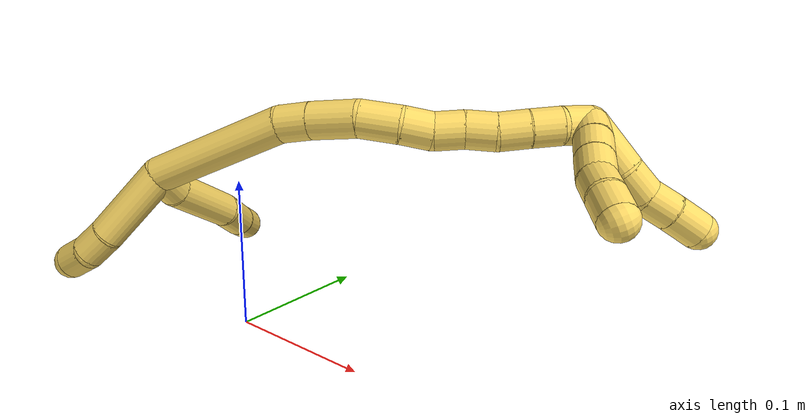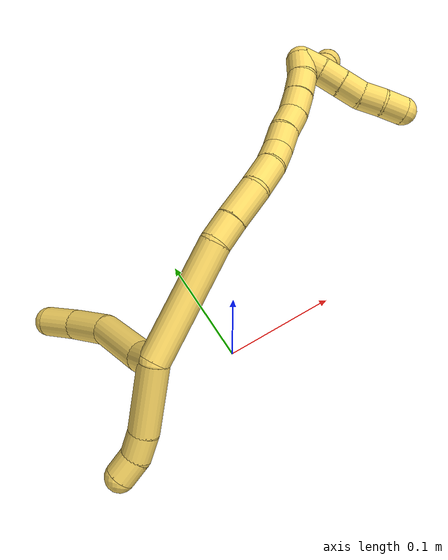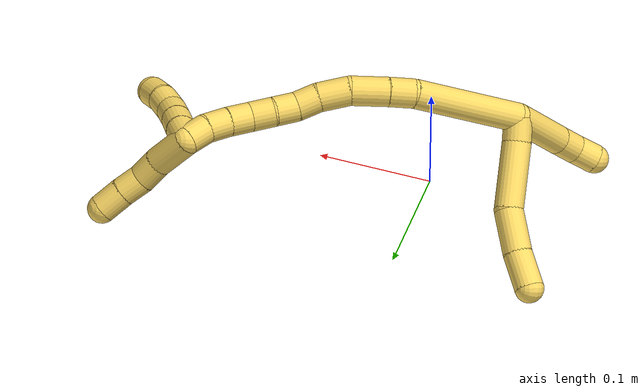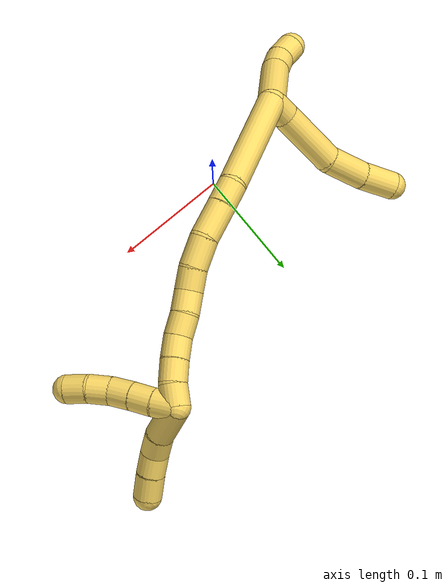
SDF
<sdf version="1.7">
 <world name="default">
  <model name="photoneo_s_sensor">
   <static>1</static>
   <pose>0 0 2 1.57079 1.57079 3.14159</pose>
   <link name="link">
    <inertial><mass>0.1</mass></inertial>
    <sensor name="sensor" type="depth">
     <update_rate>30</update_rate>
     <camera>
      <horizontal_fov>1.22</horizontal_fov>
      <image><width>1920</width><height>1200</height><format>B8G8R8</format></image>
      <clip><near>0.1</near><far>4</far></clip>
      <depth_camera><output>points</output></depth_camera>
     </camera>
     <plugin name="camera_plugin" filename="libgazebo_ros_depth_camera.so">
      <baseline>0.2</baseline>
      <alwaysOn>1</alwaysOn>
      <updateRate>0.0</updateRate>
      <cameraName>camera_ir</cameraName>
      <imageTopicName>/camera/color/image_raw</imageTopicName>
      <cameraInfoTopicName>/camera/color/camera_info</cameraInfoTopicName>
      <depthImageTopicName>/camera/depth/image_raw</depthImageTopicName>
      <depthImageCameraInfoTopicName>/camera/depth/camera_info</depthImageCameraInfoTopicName>
      <pointCloudTopicName>/camera/depth/points</pointCloudTopicName>
      <frameName>fr_optical</frameName>
      <pointCloudCutoff>0.1</pointCloudCutoff>
      <pointCloudCutoffMax>2.0</pointCloudCutoffMax>
      <distortionK1>0</distortionK1>
      <distortionK2>0</distortionK2>
      <distortionK3>0</distortionK3>
      <distortionT1>0</distortionT1>
      <distortionT2>0</distortionT2>
      <CxPrime>0</CxPrime>
      <Cx>0</Cx>
      <Cy>0</Cy>
      <focalLength>0</focalLength>
      <hackBaseline>0</hackBaseline>
     </plugin>
    </sensor>
   </link>
  </model>
  <model name="bin">
   <static>1</static>
   <link name="bottom">
    <collision name="collision-bottom">
     <pose>0 0 -0.01 0 -0 0</pose>
     <geometry><box><size>0.8 0.6 0.02</size></box></geometry>
     <surface>
      <friction><ode><mu>100</mu><mu2>100</mu2></ode></friction>
      <contact><collide_bitmask>65535</collide_bitmask></contact>
     </surface>
    </collision>
   </link>
   <link name="west_wall">
    <collision name="collision-west_wall">
     <pose>-0.41 0 0.1 0 -0 0</pose>
     <geometry><box><size>0.02 0.6 0.2</size></box></geometry>
     <surface>
      <friction><ode><mu>100</mu><mu2>100</mu2></ode></friction>
      <contact><collide_bitmask>65535</collide_bitmask></contact>
     </surface>
    </collision>
   </link>
   <link name="east_wall">
    <collision name="collision-east_wall">
     <pose>0.41 0 0.1 0 -0 0</pose>
     <geometry><box><size>0.02 0.6 0.2</size></box></geometry>
     <surface>
      <friction><ode><mu>100</mu><mu2>100</mu2></ode></friction>
      <contact><collide_bitmask>65535</collide_bitmask></contact>
     </surface>
    </collision>
   </link>
   <link name="south_wall">
    <collision name="collision-south_wall">
     <pose>0 -0.31 0.1 0 -0 0</pose>
     <geometry><box><size>0.8 0.02 0.2</size></box></geometry>
     <surface>
      <friction><ode><mu>100</mu><mu2>100</mu2></ode></friction>
      <contact><collide_bitmask>65535</collide_bitmask></contact>
     </surface>
    </collision>
   </link>
   <link name="north_wall">
    <collision name="collision-north_wall">
     <pose>0 0.31 0.1 0 -0 0</pose>
     <geometry><box><size>0.8 0.02 0.2</size></box></geometry>
     <surface>
      <friction><ode><mu>100</mu><mu2>100</mu2></ode></friction>
      <contact><collide_bitmask>65535</collide_bitmask></contact>
     </surface>
    </collision>
   </link>
  </model>
  <model name="5">
   <static>0</static>
   <link name="5">
    <collision name="collision-cylinder-e_1_2_8">
     <pose>-0.002616 0.010288 0.000843 -1.48903 -0.248233 0.228901</pose>
     <geometry><cylinder><radius>0.0125</radius><length>0.021299</length></cylinder></geometry>
     <surface>
      <friction><ode><mu>1.16</mu><mu2>1.16</mu2><slip1>0</slip1><slip2>0</slip2></ode></friction>
      <contact><ode><kp>1e+06</kp><kd>1</kd><max_vel>0</max_vel><min_depth>0.001</min_depth></ode></contact>
     </surface>
    </collision>
    <visual name="visual-cylinder-e_1_2_8">
     <pose>-0.002616 0.010288 0.000843 -1.48903 -0.248233 0.228901</pose>
     <geometry><cylinder><radius>0.0125</radius><length>0.021299</length></cylinder></geometry>
     <material><ambient>1 0.858824 0.4 1</ambient></material>
    </visual>
    <collision name="collision-cylinder-e_2_8_9">
     <pose>-0.016154 0.046815 0.009619 -1.27719 -0.379142 0.282977</pose>
     <geometry><cylinder><radius>0.0125</radius><length>0.059013</length></cylinder></geometry>
     <surface>
      <friction><ode><mu>1.16</mu><mu2>1.16</mu2><slip1>0</slip1><slip2>0</slip2></ode></friction>
      <contact><ode><kp>1e+06</kp><kd>1</kd><max_vel>0</max_vel><min_depth>0.001</min_depth></ode></contact>
     </surface>
    </collision>
    <visual name="visual-cylinder-e_2_8_9">
     <pose>-0.016154 0.046815 0.009619 -1.27719 -0.379142 0.282977</pose>
     <geometry><cylinder><radius>0.0125</radius><length>0.059013</length></cylinder></geometry>
     <material><ambient>1 0.858824 0.4 1</ambient></material>
    </visual>
    <collision name="collision-cylinder-e_3_9_10">
     <pose>-0.037224 0.08894 0.017675 -1.56306 -0.568475 0.564326</pose>
     <geometry><cylinder><radius>0.0125</radius><length>0.037704</length></cylinder></geometry>
     <surface>
      <friction><ode><mu>1.16</mu><mu2>1.16</mu2><slip1>0</slip1><slip2>0</slip2></ode></friction>
      <contact><ode><kp>1e+06</kp><kd>1</kd><max_vel>0</max_vel><min_depth>0.001</min_depth></ode></contact>
     </surface>
    </collision>
    <visual name="visual-cylinder-e_3_9_10">
     <pose>-0.037224 0.08894 0.017675 -1.56306 -0.568475 0.564326</pose>
     <geometry><cylinder><radius>0.0125</radius><length>0.037704</length></cylinder></geometry>
     <material><ambient>1 0.858824 0.4 1</ambient></material>
    </visual>
    <collision name="collision-cylinder-e_4_10_6">
     <pose>-0.057562 0.117136 0.017181 -1.62085 -0.690819 0.723346</pose>
     <geometry><cylinder><radius>0.0125</radius><length>0.031984</length></cylinder></geometry>
     <surface>
      <friction><ode><mu>1.16</mu><mu2>1.16</mu2><slip1>0</slip1><slip2>0</slip2></ode></friction>
      <contact><ode><kp>1e+06</kp><kd>1</kd><max_vel>0</max_vel><min_depth>0.001</min_depth></ode></contact>
     </surface>
    </collision>
    <visual name="visual-cylinder-e_4_10_6">
     <pose>-0.057562 0.117136 0.017181 -1.62085 -0.690819 0.723346</pose>
     <geometry><cylinder><radius>0.0125</radius><length>0.031984</length></cylinder></geometry>
     <material><ambient>1 0.858824 0.4 1</ambient></material>
    </visual>
    <collision name="collision-cylinder-e_1_2_11">
     <pose>0.00389 0.01143 -0.026548 -2.73502 0.133764 -0.628368</pose>
     <geometry><cylinder><radius>0.0125</radius><length>0.058329</length></cylinder></geometry>
     <surface>
      <friction><ode><mu>1.16</mu><mu2>1.16</mu2><slip1>0</slip1><slip2>0</slip2></ode></friction>
      <contact><ode><kp>1e+06</kp><kd>1</kd><max_vel>0</max_vel><min_depth>0.001</min_depth></ode></contact>
     </surface>
    </collision>
    <visual name="visual-cylinder-e_1_2_11">
     <pose>0.00389 0.01143 -0.026548 -2.73502 0.133764 -0.628368</pose>
     <geometry><cylinder><radius>0.0125</radius><length>0.058329</length></cylinder></geometry>
     <material><ambient>1 0.858824 0.4 1</ambient></material>
    </visual>
    <collision name="collision-cylinder-e_2_11_12">
     <pose>0.007548 0.027091 -0.062912 -2.73476 -0.021656 0.104898</pose>
     <geometry><cylinder><radius>0.0125</radius><length>0.021383</length></cylinder></geometry>
     <surface>
      <friction><ode><mu>1.16</mu><mu2>1.16</mu2><slip1>0</slip1><slip2>0</slip2></ode></friction>
      <contact><ode><kp>1e+06</kp><kd>1</kd><max_vel>0</max_vel><min_depth>0.001</min_depth></ode></contact>
     </surface>
    </collision>
    <visual name="visual-cylinder-e_2_11_12">
     <pose>0.007548 0.027091 -0.062912 -2.73476 -0.021656 0.104898</pose>
     <geometry><cylinder><radius>0.0125</radius><length>0.021383</length></cylinder></geometry>
     <material><ambient>1 0.858824 0.4 1</ambient></material>
    </visual>
    <collision name="collision-cylinder-e_3_12_5">
     <pose>0.003687 0.035027 -0.081446 -2.73952 -0.365879 1.47425</pose>
     <geometry><cylinder><radius>0.0125</radius><length>0.020288</length></cylinder></geometry>
     <surface>
      <friction><ode><mu>1.16</mu><mu2>1.16</mu2><slip1>0</slip1><slip2>0</slip2></ode></friction>
      <contact><ode><kp>1e+06</kp><kd>1</kd><max_vel>0</max_vel><min_depth>0.001</min_depth></ode></contact>
     </surface>
    </collision>
    <visual name="visual-cylinder-e_3_12_5">
     <pose>0.003687 0.035027 -0.081446 -2.73952 -0.365879 1.47425</pose>
     <geometry><cylinder><radius>0.0125</radius><length>0.020288</length></cylinder></geometry>
     <material><ambient>1 0.858824 0.4 1</ambient></material>
    </visual>
    <collision name="collision-cylinder-e_1_2_13">
     <pose>0.012477 -0.008085 0.04682 0.170988 0.256797 0.022129</pose>
     <geometry><cylinder><radius>0.0125</radius><length>0.098247</length></cylinder></geometry>
     <surface>
      <friction><ode><mu>1.16</mu><mu2>1.16</mu2><slip1>0</slip1><slip2>0</slip2></ode></friction>
      <contact><ode><kp>1e+06</kp><kd>1</kd><max_vel>0</max_vel><min_depth>0.001</min_depth></ode></contact>
     </surface>
    </collision>
    <visual name="visual-cylinder-e_1_2_13">
     <pose>0.012477 -0.008085 0.04682 0.170988 0.256797 0.022129</pose>
     <geometry><cylinder><radius>0.0125</radius><length>0.098247</length></cylinder></geometry>
     <material><ambient>1 0.858824 0.4 1</ambient></material>
    </visual>
    <collision name="collision-cylinder-e_2_13_14">
     <pose>0.029577 -0.015885 0.103607 -0.028464 0.434204 -0.006279</pose>
     <geometry><cylinder><radius>0.0125</radius><length>0.021982</length></cylinder></geometry>
     <surface>
      <friction><ode><mu>1.16</mu><mu2>1.16</mu2><slip1>0</slip1><slip2>0</slip2></ode></friction>
      <contact><ode><kp>1e+06</kp><kd>1</kd><max_vel>0</max_vel><min_depth>0.001</min_depth></ode></contact>
     </surface>
    </collision>
    <visual name="visual-cylinder-e_2_13_14">
     <pose>0.029577 -0.015885 0.103607 -0.028464 0.434204 -0.006279</pose>
     <geometry><cylinder><radius>0.0125</radius><length>0.021982</length></cylinder></geometry>
     <material><ambient>1 0.858824 0.4 1</ambient></material>
    </visual>
    <collision name="collision-cylinder-e_3_14_15">
     <pose>0.041635 -0.014465 0.12787 -0.079339 0.478237 -0.019351</pose>
     <geometry><cylinder><radius>0.0125</radius><length>0.032306</length></cylinder></geometry>
     <surface>
      <friction><ode><mu>1.16</mu><mu2>1.16</mu2><slip1>0</slip1><slip2>0</slip2></ode></friction>
      <contact><ode><kp>1e+06</kp><kd>1</kd><max_vel>0</max_vel><min_depth>0.001</min_depth></ode></contact>
     </surface>
    </collision>
    <visual name="visual-cylinder-e_3_14_15">
     <pose>0.041635 -0.014465 0.12787 -0.079339 0.478237 -0.019351</pose>
     <geometry><cylinder><radius>0.0125</radius><length>0.032306</length></cylinder></geometry>
     <material><ambient>1 0.858824 0.4 1</ambient></material>
    </visual>
    <collision name="collision-cylinder-e_4_15_16">
     <pose>0.055066 -0.00908 0.15349 -0.358916 0.460324 -0.084963</pose>
     <geometry><cylinder><radius>0.0125</radius><length>0.027002</length></cylinder></geometry>
     <surface>
      <friction><ode><mu>1.16</mu><mu2>1.16</mu2><slip1>0</slip1><slip2>0</slip2></ode></friction>
      <contact><ode><kp>1e+06</kp><kd>1</kd><max_vel>0</max_vel><min_depth>0.001</min_depth></ode></contact>
     </surface>
    </collision>
    <visual name="visual-cylinder-e_4_15_16">
     <pose>0.055066 -0.00908 0.15349 -0.358916 0.460324 -0.084963</pose>
     <geometry><cylinder><radius>0.0125</radius><length>0.027002</length></cylinder></geometry>
     <material><ambient>1 0.858824 0.4 1</ambient></material>
    </visual>
    <collision name="collision-cylinder-e_5_16_17">
     <pose>0.064418 -0.000134 0.173076 -0.51701 0.339329 -0.090535</pose>
     <geometry><cylinder><radius>0.0125</radius><length>0.020155</length></cylinder></geometry>
     <surface>
      <friction><ode><mu>1.16</mu><mu2>1.16</mu2><slip1>0</slip1><slip2>0</slip2></ode></friction>
      <contact><ode><kp>1e+06</kp><kd>1</kd><max_vel>0</max_vel><min_depth>0.001</min_depth></ode></contact>
     </surface>
    </collision>
    <visual name="visual-cylinder-e_5_16_17">
     <pose>0.064418 -0.000134 0.173076 -0.51701 0.339329 -0.090535</pose>
     <geometry><cylinder><radius>0.0125</radius><length>0.020155</length></cylinder></geometry>
     <material><ambient>1 0.858824 0.4 1</ambient></material>
    </visual>
    <collision name="collision-cylinder-e_6_17_18">
     <pose>0.070016 0.00709 0.190751 -0.262201 0.2262 -0.029952</pose>
     <geometry><cylinder><radius>0.0125</radius><length>0.020005</length></cylinder></geometry>
     <surface>
      <friction><ode><mu>1.16</mu><mu2>1.16</mu2><slip1>0</slip1><slip2>0</slip2></ode></friction>
      <contact><ode><kp>1e+06</kp><kd>1</kd><max_vel>0</max_vel><min_depth>0.001</min_depth></ode></contact>
     </surface>
    </collision>
    <visual name="visual-cylinder-e_6_17_18">
     <pose>0.070016 0.00709 0.190751 -0.262201 0.2262 -0.029952</pose>
     <geometry><cylinder><radius>0.0125</radius><length>0.020005</length></cylinder></geometry>
     <material><ambient>1 0.858824 0.4 1</ambient></material>
    </visual>
    <collision name="collision-cylinder-e_7_18_19">
     <pose>0.075967 0.012634 0.208975 -0.329977 0.378976 -0.063845</pose>
     <geometry><cylinder><radius>0.0125</radius><length>0.020045</length></cylinder></geometry>
     <surface>
      <friction><ode><mu>1.16</mu><mu2>1.16</mu2><slip1>0</slip1><slip2>0</slip2></ode></friction>
      <contact><ode><kp>1e+06</kp><kd>1</kd><max_vel>0</max_vel><min_depth>0.001</min_depth></ode></contact>
     </surface>
    </collision>
    <visual name="visual-cylinder-e_7_18_19">
     <pose>0.075967 0.012634 0.208975 -0.329977 0.378976 -0.063845</pose>
     <geometry><cylinder><radius>0.0125</radius><length>0.020045</length></cylinder></geometry>
     <material><ambient>1 0.858824 0.4 1</ambient></material>
    </visual>
    <collision name="collision-cylinder-e_8_19_20">
     <pose>0.081525 0.018022 0.227393 -0.241875 0.184807 -0.022523</pose>
     <geometry><cylinder><radius>0.0125</radius><length>0.020138</length></cylinder></geometry>
     <surface>
      <friction><ode><mu>1.16</mu><mu2>1.16</mu2><slip1>0</slip1><slip2>0</slip2></ode></friction>
      <contact><ode><kp>1e+06</kp><kd>1</kd><max_vel>0</max_vel><min_depth>0.001</min_depth></ode></contact>
     </surface>
    </collision>
    <visual name="visual-cylinder-e_8_19_20">
     <pose>0.081525 0.018022 0.227393 -0.241875 0.184807 -0.022523</pose>
     <geometry><cylinder><radius>0.0125</radius><length>0.020138</length></cylinder></geometry>
     <material><ambient>1 0.858824 0.4 1</ambient></material>
    </visual>
    <collision name="collision-cylinder-e_9_20_21">
     <pose>0.084724 0.02335 0.246518 -0.301368 0.134508 -0.020453</pose>
     <geometry><cylinder><radius>0.0125</radius><length>0.02011</length></cylinder></geometry>
     <surface>
      <friction><ode><mu>1.16</mu><mu2>1.16</mu2><slip1>0</slip1><slip2>0</slip2></ode></friction>
      <contact><ode><kp>1e+06</kp><kd>1</kd><max_vel>0</max_vel><min_depth>0.001</min_depth></ode></contact>
     </surface>
    </collision>
    <visual name="visual-cylinder-e_9_20_21">
     <pose>0.084724 0.02335 0.246518 -0.301368 0.134508 -0.020453</pose>
     <geometry><cylinder><radius>0.0125</radius><length>0.02011</length></cylinder></geometry>
     <material><ambient>1 0.858824 0.4 1</ambient></material>
    </visual>
    <collision name="collision-cylinder-e_10_21_1">
     <pose>0.085841 0.030971 0.264881 -0.485059 -0.023155 0.005729</pose>
     <geometry><cylinder><radius>0.0125</radius><length>0.02001</length></cylinder></geometry>
     <surface>
      <friction><ode><mu>1.16</mu><mu2>1.16</mu2><slip1>0</slip1><slip2>0</slip2></ode></friction>
      <contact><ode><kp>1e+06</kp><kd>1</kd><max_vel>0</max_vel><min_depth>0.001</min_depth></ode></contact>
     </surface>
    </collision>
    <visual name="visual-cylinder-e_10_21_1">
     <pose>0.085841 0.030971 0.264881 -0.485059 -0.023155 0.005729</pose>
     <geometry><cylinder><radius>0.0125</radius><length>0.02001</length></cylinder></geometry>
     <material><ambient>1 0.858824 0.4 1</ambient></material>
    </visual>
    <collision name="collision-cylinder-e_1_1_22">
     <pose>0.098067 0.048161 0.278036 -1.23969 0.754765 -0.551369</pose>
     <geometry><cylinder><radius>0.0125</radius><length>0.036367</length></cylinder></geometry>
     <surface>
      <friction><ode><mu>1.16</mu><mu2>1.16</mu2><slip1>0</slip1><slip2>0</slip2></ode></friction>
      <contact><ode><kp>1e+06</kp><kd>1</kd><max_vel>0</max_vel><min_depth>0.001</min_depth></ode></contact>
     </surface>
    </collision>
    <visual name="visual-cylinder-e_1_1_22">
     <pose>0.098067 0.048161 0.278036 -1.23969 0.754765 -0.551369</pose>
     <geometry><cylinder><radius>0.0125</radius><length>0.036367</length></cylinder></geometry>
     <material><ambient>1 0.858824 0.4 1</ambient></material>
    </visual>
    <collision name="collision-cylinder-e_2_22_23">
     <pose>0.11599 0.069038 0.285547 -1.20431 0.548445 -0.381979</pose>
     <geometry><cylinder><radius>0.0125</radius><length>0.020965</length></cylinder></geometry>
     <surface>
      <friction><ode><mu>1.16</mu><mu2>1.16</mu2><slip1>0</slip1><slip2>0</slip2></ode></friction>
      <contact><ode><kp>1e+06</kp><kd>1</kd><max_vel>0</max_vel><min_depth>0.001</min_depth></ode></contact>
     </surface>
    </collision>
    <visual name="visual-cylinder-e_2_22_23">
     <pose>0.11599 0.069038 0.285547 -1.20431 0.548445 -0.381979</pose>
     <geometry><cylinder><radius>0.0125</radius><length>0.020965</length></cylinder></geometry>
     <material><ambient>1 0.858824 0.4 1</ambient></material>
    </visual>
    <collision name="collision-cylinder-e_3_23_24">
     <pose>0.125923 0.084301 0.294578 -0.870451 0.458998 -0.216395</pose>
     <geometry><cylinder><radius>0.0125</radius><length>0.020164</length></cylinder></geometry>
     <surface>
      <friction><ode><mu>1.16</mu><mu2>1.16</mu2><slip1>0</slip1><slip2>0</slip2></ode></friction>
      <contact><ode><kp>1e+06</kp><kd>1</kd><max_vel>0</max_vel><min_depth>0.001</min_depth></ode></contact>
     </surface>
    </collision>
    <visual name="visual-cylinder-e_3_23_24">
     <pose>0.125923 0.084301 0.294578 -0.870451 0.458998 -0.216395</pose>
     <geometry><cylinder><radius>0.0125</radius><length>0.020164</length></cylinder></geometry>
     <material><ambient>1 0.858824 0.4 1</ambient></material>
    </visual>
    <collision name="collision-cylinder-e_4_24_4">
     <pose>0.134893 0.099466 0.306583 -0.928126 0.411767 -0.208303</pose>
     <geometry><cylinder><radius>0.0125</radius><length>0.022503</length></cylinder></geometry>
     <surface>
      <friction><ode><mu>1.16</mu><mu2>1.16</mu2><slip1>0</slip1><slip2>0</slip2></ode></friction>
      <contact><ode><kp>1e+06</kp><kd>1</kd><max_vel>0</max_vel><min_depth>0.001</min_depth></ode></contact>
     </surface>
    </collision>
    <visual name="visual-cylinder-e_4_24_4">
     <pose>0.134893 0.099466 0.306583 -0.928126 0.411767 -0.208303</pose>
     <geometry><cylinder><radius>0.0125</radius><length>0.022503</length></cylinder></geometry>
     <material><ambient>1 0.858824 0.4 1</ambient></material>
    </visual>
    <collision name="collision-cylinder-e_1_1_25">
     <pose>0.094994 0.033467 0.271042 2.46292 1.21821 2.20469</pose>
     <geometry><cylinder><radius>0.0125</radius><length>0.02</length></cylinder></geometry>
     <surface>
      <friction><ode><mu>1.16</mu><mu2>1.16</mu2><slip1>0</slip1><slip2>0</slip2></ode></friction>
      <contact><ode><kp>1e+06</kp><kd>1</kd><max_vel>0</max_vel><min_depth>0.001</min_depth></ode></contact>
     </surface>
    </collision>
    <visual name="visual-cylinder-e_1_1_25">
     <pose>0.094994 0.033467 0.271042 2.46292 1.21821 2.20469</pose>
     <geometry><cylinder><radius>0.0125</radius><length>0.02</length></cylinder></geometry>
     <material><ambient>1 0.858824 0.4 1</ambient></material>
    </visual>
    <collision name="collision-cylinder-e_2_25_26">
     <pose>0.113575 0.029494 0.264864 2.66434 1.16706 2.43556</pose>
     <geometry><cylinder><radius>0.0125</radius><length>0.02</length></cylinder></geometry>
     <surface>
      <friction><ode><mu>1.16</mu><mu2>1.16</mu2><slip1>0</slip1><slip2>0</slip2></ode></friction>
      <contact><ode><kp>1e+06</kp><kd>1</kd><max_vel>0</max_vel><min_depth>0.001</min_depth></ode></contact>
     </surface>
    </collision>
    <visual name="visual-cylinder-e_2_25_26">
     <pose>0.113575 0.029494 0.264864 2.66434 1.16706 2.43556</pose>
     <geometry><cylinder><radius>0.0125</radius><length>0.02</length></cylinder></geometry>
     <material><ambient>1 0.858824 0.4 1</ambient></material>
    </visual>
    <collision name="collision-cylinder-e_3_26_27">
     <pose>0.132115 0.026304 0.258093 2.74204 1.20666 2.56997</pose>
     <geometry><cylinder><radius>0.0125</radius><length>0.02</length></cylinder></geometry>
     <surface>
      <friction><ode><mu>1.16</mu><mu2>1.16</mu2><slip1>0</slip1><slip2>0</slip2></ode></friction>
      <contact><ode><kp>1e+06</kp><kd>1</kd><max_vel>0</max_vel><min_depth>0.001</min_depth></ode></contact>
     </surface>
    </collision>
    <visual name="visual-cylinder-e_3_26_27">
     <pose>0.132115 0.026304 0.258093 2.74204 1.20666 2.56997</pose>
     <geometry><cylinder><radius>0.0125</radius><length>0.02</length></cylinder></geometry>
     <material><ambient>1 0.858824 0.4 1</ambient></material>
    </visual>
    <collision name="collision-cylinder-e_4_27_28">
     <pose>0.151074 0.022508 0.253491 2.07233 1.29225 1.81024</pose>
     <geometry><cylinder><radius>0.0125</radius><length>0.02</length></cylinder></geometry>
     <surface>
      <friction><ode><mu>1.16</mu><mu2>1.16</mu2><slip1>0</slip1><slip2>0</slip2></ode></friction>
      <contact><ode><kp>1e+06</kp><kd>1</kd><max_vel>0</max_vel><min_depth>0.001</min_depth></ode></contact>
     </surface>
    </collision>
    <visual name="visual-cylinder-e_4_27_28">
     <pose>0.151074 0.022508 0.253491 2.07233 1.29225 1.81024</pose>
     <geometry><cylinder><radius>0.0125</radius><length>0.02</length></cylinder></geometry>
     <material><ambient>1 0.858824 0.4 1</ambient></material>
    </visual>
    <collision name="collision-cylinder-e_5_28_3">
     <pose>0.170611 0.019509 0.251072 2.64963 1.44606 2.58722</pose>
     <geometry><cylinder><radius>0.0125</radius><length>0.02</length></cylinder></geometry>
     <surface>
      <friction><ode><mu>1.16</mu><mu2>1.16</mu2><slip1>0</slip1><slip2>0</slip2></ode></friction>
      <contact><ode><kp>1e+06</kp><kd>1</kd><max_vel>0</max_vel><min_depth>0.001</min_depth></ode></contact>
     </surface>
    </collision>
    <visual name="visual-cylinder-e_5_28_3">
     <pose>0.170611 0.019509 0.251072 2.64963 1.44606 2.58722</pose>
     <geometry><cylinder><radius>0.0125</radius><length>0.02</length></cylinder></geometry>
     <material><ambient>1 0.858824 0.4 1</ambient></material>
    </visual>
    <collision name="collision-sphere-3">
     <pose>0.180533 0.018922 0.249975 0 -0 0</pose>
     <geometry><sphere><radius>0.0125</radius></sphere></geometry>
     <surface>
      <friction><ode><mu>1.16</mu><mu2>1.16</mu2><slip1>0</slip1><slip2>0</slip2></ode></friction>
      <contact><ode><kp>1e+06</kp><kd>1</kd><max_vel>0</max_vel><min_depth>0.001</min_depth></ode></contact>
     </surface>
    </collision>
    <visual name="visual-sphere-3">
     <pose>0.180533 0.018922 0.249975 0 -0 0</pose>
     <geometry><sphere><radius>0.0125</radius></sphere></geometry>
     <material><ambient>1 0.858824 0.4 1</ambient></material>
    </visual>
    <collision name="collision-sphere-28">
     <pose>0.160689 0.020097 0.252169 0 -0 0</pose>
     <geometry><sphere><radius>0.0125</radius></sphere></geometry>
     <surface>
      <friction><ode><mu>1.16</mu><mu2>1.16</mu2><slip1>0</slip1><slip2>0</slip2></ode></friction>
      <contact><ode><kp>1e+06</kp><kd>1</kd><max_vel>0</max_vel><min_depth>0.001</min_depth></ode></contact>
     </surface>
    </collision>
    <visual name="visual-sphere-28">
     <pose>0.160689 0.020097 0.252169 0 -0 0</pose>
     <geometry><sphere><radius>0.0125</radius></sphere></geometry>
     <material><ambient>1 0.858824 0.4 1</ambient></material>
    </visual>
    <collision name="collision-sphere-27">
     <pose>0.141459 0.024919 0.254812 0 -0 0</pose>
     <geometry><sphere><radius>0.0125</radius></sphere></geometry>
     <surface>
      <friction><ode><mu>1.16</mu><mu2>1.16</mu2><slip1>0</slip1><slip2>0</slip2></ode></friction>
      <contact><ode><kp>1e+06</kp><kd>1</kd><max_vel>0</max_vel><min_depth>0.001</min_depth></ode></contact>
     </surface>
    </collision>
    <visual name="visual-sphere-27">
     <pose>0.141459 0.024919 0.254812 0 -0 0</pose>
     <geometry><sphere><radius>0.0125</radius></sphere></geometry>
     <material><ambient>1 0.858824 0.4 1</ambient></material>
    </visual>
    <collision name="collision-sphere-26">
     <pose>0.122771 0.02769 0.261374 0 -0 0</pose>
     <geometry><sphere><radius>0.0125</radius></sphere></geometry>
     <surface>
      <friction><ode><mu>1.16</mu><mu2>1.16</mu2><slip1>0</slip1><slip2>0</slip2></ode></friction>
      <contact><ode><kp>1e+06</kp><kd>1</kd><max_vel>0</max_vel><min_depth>0.001</min_depth></ode></contact>
     </surface>
    </collision>
    <visual name="visual-sphere-26">
     <pose>0.122771 0.02769 0.261374 0 -0 0</pose>
     <geometry><sphere><radius>0.0125</radius></sphere></geometry>
     <material><ambient>1 0.858824 0.4 1</ambient></material>
    </visual>
    <collision name="collision-sphere-25">
     <pose>0.104379 0.031299 0.268354 0 -0 0</pose>
     <geometry><sphere><radius>0.0125</radius></sphere></geometry>
     <surface>
      <friction><ode><mu>1.16</mu><mu2>1.16</mu2><slip1>0</slip1><slip2>0</slip2></ode></friction>
      <contact><ode><kp>1e+06</kp><kd>1</kd><max_vel>0</max_vel><min_depth>0.001</min_depth></ode></contact>
     </surface>
    </collision>
    <visual name="visual-sphere-25">
     <pose>0.104379 0.031299 0.268354 0 -0 0</pose>
     <geometry><sphere><radius>0.0125</radius></sphere></geometry>
     <material><ambient>1 0.858824 0.4 1</ambient></material>
    </visual>
    <collision name="collision-sphere-4">
     <pose>0.139396 0.10772 0.312762 0 -0 0</pose>
     <geometry><sphere><radius>0.0125</radius></sphere></geometry>
     <surface>
      <friction><ode><mu>1.16</mu><mu2>1.16</mu2><slip1>0</slip1><slip2>0</slip2></ode></friction>
      <contact><ode><kp>1e+06</kp><kd>1</kd><max_vel>0</max_vel><min_depth>0.001</min_depth></ode></contact>
     </surface>
    </collision>
    <visual name="visual-sphere-4">
     <pose>0.139396 0.10772 0.312762 0 -0 0</pose>
     <geometry><sphere><radius>0.0125</radius></sphere></geometry>
     <material><ambient>1 0.858824 0.4 1</ambient></material>
    </visual>
    <collision name="collision-sphere-24">
     <pose>0.13039 0.091212 0.300403 0 -0 0</pose>
     <geometry><sphere><radius>0.0125</radius></sphere></geometry>
     <surface>
      <friction><ode><mu>1.16</mu><mu2>1.16</mu2><slip1>0</slip1><slip2>0</slip2></ode></friction>
      <contact><ode><kp>1e+06</kp><kd>1</kd><max_vel>0</max_vel><min_depth>0.001</min_depth></ode></contact>
     </surface>
    </collision>
    <visual name="visual-sphere-24">
     <pose>0.13039 0.091212 0.300403 0 -0 0</pose>
     <geometry><sphere><radius>0.0125</radius></sphere></geometry>
     <material><ambient>1 0.858824 0.4 1</ambient></material>
    </visual>
    <collision name="collision-sphere-23">
     <pose>0.121456 0.077389 0.288752 0 -0 0</pose>
     <geometry><sphere><radius>0.0125</radius></sphere></geometry>
     <surface>
      <friction><ode><mu>1.16</mu><mu2>1.16</mu2><slip1>0</slip1><slip2>0</slip2></ode></friction>
      <contact><ode><kp>1e+06</kp><kd>1</kd><max_vel>0</max_vel><min_depth>0.001</min_depth></ode></contact>
     </surface>
    </collision>
    <visual name="visual-sphere-23">
     <pose>0.121456 0.077389 0.288752 0 -0 0</pose>
     <geometry><sphere><radius>0.0125</radius></sphere></geometry>
     <material><ambient>1 0.858824 0.4 1</ambient></material>
    </visual>
    <collision name="collision-sphere-22">
     <pose>0.110525 0.060687 0.282342 0 -0 0</pose>
     <geometry><sphere><radius>0.0125</radius></sphere></geometry>
     <surface>
      <friction><ode><mu>1.16</mu><mu2>1.16</mu2><slip1>0</slip1><slip2>0</slip2></ode></friction>
      <contact><ode><kp>1e+06</kp><kd>1</kd><max_vel>0</max_vel><min_depth>0.001</min_depth></ode></contact>
     </surface>
    </collision>
    <visual name="visual-sphere-22">
     <pose>0.110525 0.060687 0.282342 0 -0 0</pose>
     <geometry><sphere><radius>0.0125</radius></sphere></geometry>
     <material><ambient>1 0.858824 0.4 1</ambient></material>
    </visual>
    <collision name="collision-sphere-1">
     <pose>0.085609 0.035635 0.27373 0 -0 0</pose>
     <geometry><sphere><radius>0.0125</radius></sphere></geometry>
     <surface>
      <friction><ode><mu>1.16</mu><mu2>1.16</mu2><slip1>0</slip1><slip2>0</slip2></ode></friction>
      <contact><ode><kp>1e+06</kp><kd>1</kd><max_vel>0</max_vel><min_depth>0.001</min_depth></ode></contact>
     </surface>
    </collision>
    <visual name="visual-sphere-1">
     <pose>0.085609 0.035635 0.27373 0 -0 0</pose>
     <geometry><sphere><radius>0.0125</radius></sphere></geometry>
     <material><ambient>1 0.858824 0.4 1</ambient></material>
    </visual>
    <collision name="collision-sphere-21">
     <pose>0.086073 0.026307 0.256033 0 -0 0</pose>
     <geometry><sphere><radius>0.0125</radius></sphere></geometry>
     <surface>
      <friction><ode><mu>1.16</mu><mu2>1.16</mu2><slip1>0</slip1><slip2>0</slip2></ode></friction>
      <contact><ode><kp>1e+06</kp><kd>1</kd><max_vel>0</max_vel><min_depth>0.001</min_depth></ode></contact>
     </surface>
    </collision>
    <visual name="visual-sphere-21">
     <pose>0.086073 0.026307 0.256033 0 -0 0</pose>
     <geometry><sphere><radius>0.0125</radius></sphere></geometry>
     <material><ambient>1 0.858824 0.4 1</ambient></material>
    </visual>
    <collision name="collision-sphere-11">
     <pose>0.007779 0.022861 -0.053096 0 -0 0</pose>
     <geometry><sphere><radius>0.0125</radius></sphere></geometry>
     <surface>
      <friction><ode><mu>1.16</mu><mu2>1.16</mu2><slip1>0</slip1><slip2>0</slip2></ode></friction>
      <contact><ode><kp>1e+06</kp><kd>1</kd><max_vel>0</max_vel><min_depth>0.001</min_depth></ode></contact>
     </surface>
    </collision>
    <visual name="visual-sphere-11">
     <pose>0.007779 0.022861 -0.053096 0 -0 0</pose>
     <geometry><sphere><radius>0.0125</radius></sphere></geometry>
     <material><ambient>1 0.858824 0.4 1</ambient></material>
    </visual>
    <collision name="collision-sphere-6">
     <pose>-0.067752 0.129446 0.016564 0 -0 0</pose>
     <geometry><sphere><radius>0.0125</radius></sphere></geometry>
     <surface>
      <friction><ode><mu>1.16</mu><mu2>1.16</mu2><slip1>0</slip1><slip2>0</slip2></ode></friction>
      <contact><ode><kp>1e+06</kp><kd>1</kd><max_vel>0</max_vel><min_depth>0.001</min_depth></ode></contact>
     </surface>
    </collision>
    <visual name="visual-sphere-6">
     <pose>-0.067752 0.129446 0.016564 0 -0 0</pose>
     <geometry><sphere><radius>0.0125</radius></sphere></geometry>
     <material><ambient>1 0.858824 0.4 1</ambient></material>
    </visual>
    <collision name="collision-sphere-10">
     <pose>-0.047373 0.104826 0.017798 0 -0 0</pose>
     <geometry><sphere><radius>0.0125</radius></sphere></geometry>
     <surface>
      <friction><ode><mu>1.16</mu><mu2>1.16</mu2><slip1>0</slip1><slip2>0</slip2></ode></friction>
      <contact><ode><kp>1e+06</kp><kd>1</kd><max_vel>0</max_vel><min_depth>0.001</min_depth></ode></contact>
     </surface>
    </collision>
    <visual name="visual-sphere-10">
     <pose>-0.047373 0.104826 0.017798 0 -0 0</pose>
     <geometry><sphere><radius>0.0125</radius></sphere></geometry>
     <material><ambient>1 0.858824 0.4 1</ambient></material>
    </visual>
    <collision name="collision-sphere-9">
     <pose>-0.027075 0.073053 0.017552 0 -0 0</pose>
     <geometry><sphere><radius>0.0125</radius></sphere></geometry>
     <surface>
      <friction><ode><mu>1.16</mu><mu2>1.16</mu2><slip1>0</slip1><slip2>0</slip2></ode></friction>
      <contact><ode><kp>1e+06</kp><kd>1</kd><max_vel>0</max_vel><min_depth>0.001</min_depth></ode></contact>
     </surface>
    </collision>
    <visual name="visual-sphere-9">
     <pose>-0.027075 0.073053 0.017552 0 -0 0</pose>
     <geometry><sphere><radius>0.0125</radius></sphere></geometry>
     <material><ambient>1 0.858824 0.4 1</ambient></material>
    </visual>
    <collision name="collision-sphere-2">
     <geometry><sphere><radius>0.0125</radius></sphere></geometry>
     <surface>
      <friction><ode><mu>1.16</mu><mu2>1.16</mu2><slip1>0</slip1><slip2>0</slip2></ode></friction>
      <contact><ode><kp>1e+06</kp><kd>1</kd><max_vel>0</max_vel><min_depth>0.001</min_depth></ode></contact>
     </surface>
    </collision>
    <visual name="visual-sphere-2">
     <geometry><sphere><radius>0.0125</radius></sphere></geometry>
     <material><ambient>1 0.858824 0.4 1</ambient></material>
    </visual>
    <collision name="collision-sphere-19">
     <pose>0.079675 0.015651 0.217784 0 -0 0</pose>
     <geometry><sphere><radius>0.0125</radius></sphere></geometry>
     <surface>
      <friction><ode><mu>1.16</mu><mu2>1.16</mu2><slip1>0</slip1><slip2>0</slip2></ode></friction>
      <contact><ode><kp>1e+06</kp><kd>1</kd><max_vel>0</max_vel><min_depth>0.001</min_depth></ode></contact>
     </surface>
    </collision>
    <visual name="visual-sphere-19">
     <pose>0.079675 0.015651 0.217784 0 -0 0</pose>
     <geometry><sphere><radius>0.0125</radius></sphere></geometry>
     <material><ambient>1 0.858824 0.4 1</ambient></material>
    </visual>
    <collision name="collision-sphere-8">
     <pose>-0.005233 0.020577 0.001686 0 -0 0</pose>
     <geometry><sphere><radius>0.0125</radius></sphere></geometry>
     <surface>
      <friction><ode><mu>1.16</mu><mu2>1.16</mu2><slip1>0</slip1><slip2>0</slip2></ode></friction>
      <contact><ode><kp>1e+06</kp><kd>1</kd><max_vel>0</max_vel><min_depth>0.001</min_depth></ode></contact>
     </surface>
    </collision>
    <visual name="visual-sphere-8">
     <pose>-0.005233 0.020577 0.001686 0 -0 0</pose>
     <geometry><sphere><radius>0.0125</radius></sphere></geometry>
     <material><ambient>1 0.858824 0.4 1</ambient></material>
    </visual>
    <collision name="collision-sphere-12">
     <pose>0.007316 0.03132 -0.072729 0 -0 0</pose>
     <geometry><sphere><radius>0.0125</radius></sphere></geometry>
     <surface>
      <friction><ode><mu>1.16</mu><mu2>1.16</mu2><slip1>0</slip1><slip2>0</slip2></ode></friction>
      <contact><ode><kp>1e+06</kp><kd>1</kd><max_vel>0</max_vel><min_depth>0.001</min_depth></ode></contact>
     </surface>
    </collision>
    <visual name="visual-sphere-12">
     <pose>0.007316 0.03132 -0.072729 0 -0 0</pose>
     <geometry><sphere><radius>0.0125</radius></sphere></geometry>
     <material><ambient>1 0.858824 0.4 1</ambient></material>
    </visual>
    <collision name="collision-sphere-5">
     <pose>5.8e-05 0.038734 -0.090163 0 -0 0</pose>
     <geometry><sphere><radius>0.0125</radius></sphere></geometry>
     <surface>
      <friction><ode><mu>1.16</mu><mu2>1.16</mu2><slip1>0</slip1><slip2>0</slip2></ode></friction>
      <contact><ode><kp>1e+06</kp><kd>1</kd><max_vel>0</max_vel><min_depth>0.001</min_depth></ode></contact>
     </surface>
    </collision>
    <visual name="visual-sphere-5">
     <pose>5.8e-05 0.038734 -0.090163 0 -0 0</pose>
     <geometry><sphere><radius>0.0125</radius></sphere></geometry>
     <material><ambient>1 0.858824 0.4 1</ambient></material>
    </visual>
    <collision name="collision-sphere-13">
     <pose>0.024953 -0.016169 0.09364 0 -0 0</pose>
     <geometry><sphere><radius>0.0125</radius></sphere></geometry>
     <surface>
      <friction><ode><mu>1.16</mu><mu2>1.16</mu2><slip1>0</slip1><slip2>0</slip2></ode></friction>
      <contact><ode><kp>1e+06</kp><kd>1</kd><max_vel>0</max_vel><min_depth>0.001</min_depth></ode></contact>
     </surface>
    </collision>
    <visual name="visual-sphere-13">
     <pose>0.024953 -0.016169 0.09364 0 -0 0</pose>
     <geometry><sphere><radius>0.0125</radius></sphere></geometry>
     <material><ambient>1 0.858824 0.4 1</ambient></material>
    </visual>
    <collision name="collision-sphere-14">
     <pose>0.034201 -0.015602 0.113574 0 -0 0</pose>
     <geometry><sphere><radius>0.0125</radius></sphere></geometry>
     <surface>
      <friction><ode><mu>1.16</mu><mu2>1.16</mu2><slip1>0</slip1><slip2>0</slip2></ode></friction>
      <contact><ode><kp>1e+06</kp><kd>1</kd><max_vel>0</max_vel><min_depth>0.001</min_depth></ode></contact>
     </surface>
    </collision>
    <visual name="visual-sphere-14">
     <pose>0.034201 -0.015602 0.113574 0 -0 0</pose>
     <geometry><sphere><radius>0.0125</radius></sphere></geometry>
     <material><ambient>1 0.858824 0.4 1</ambient></material>
    </visual>
    <collision name="collision-sphere-15">
     <pose>0.049069 -0.013328 0.142165 0 -0 0</pose>
     <geometry><sphere><radius>0.0125</radius></sphere></geometry>
     <surface>
      <friction><ode><mu>1.16</mu><mu2>1.16</mu2><slip1>0</slip1><slip2>0</slip2></ode></friction>
      <contact><ode><kp>1e+06</kp><kd>1</kd><max_vel>0</max_vel><min_depth>0.001</min_depth></ode></contact>
     </surface>
    </collision>
    <visual name="visual-sphere-15">
     <pose>0.049069 -0.013328 0.142165 0 -0 0</pose>
     <geometry><sphere><radius>0.0125</radius></sphere></geometry>
     <material><ambient>1 0.858824 0.4 1</ambient></material>
    </visual>
    <collision name="collision-sphere-16">
     <pose>0.061064 -0.004831 0.164815 0 -0 0</pose>
     <geometry><sphere><radius>0.0125</radius></sphere></geometry>
     <surface>
      <friction><ode><mu>1.16</mu><mu2>1.16</mu2><slip1>0</slip1><slip2>0</slip2></ode></friction>
      <contact><ode><kp>1e+06</kp><kd>1</kd><max_vel>0</max_vel><min_depth>0.001</min_depth></ode></contact>
     </surface>
    </collision>
    <visual name="visual-sphere-16">
     <pose>0.061064 -0.004831 0.164815 0 -0 0</pose>
     <geometry><sphere><radius>0.0125</radius></sphere></geometry>
     <material><ambient>1 0.858824 0.4 1</ambient></material>
    </visual>
    <collision name="collision-sphere-17">
     <pose>0.067773 0.004563 0.181337 0 -0 0</pose>
     <geometry><sphere><radius>0.0125</radius></sphere></geometry>
     <surface>
      <friction><ode><mu>1.16</mu><mu2>1.16</mu2><slip1>0</slip1><slip2>0</slip2></ode></friction>
      <contact><ode><kp>1e+06</kp><kd>1</kd><max_vel>0</max_vel><min_depth>0.001</min_depth></ode></contact>
     </surface>
    </collision>
    <visual name="visual-sphere-17">
     <pose>0.067773 0.004563 0.181337 0 -0 0</pose>
     <geometry><sphere><radius>0.0125</radius></sphere></geometry>
     <material><ambient>1 0.858824 0.4 1</ambient></material>
    </visual>
    <collision name="collision-sphere-18">
     <pose>0.072259 0.009617 0.200166 0 -0 0</pose>
     <geometry><sphere><radius>0.0125</radius></sphere></geometry>
     <surface>
      <friction><ode><mu>1.16</mu><mu2>1.16</mu2><slip1>0</slip1><slip2>0</slip2></ode></friction>
      <contact><ode><kp>1e+06</kp><kd>1</kd><max_vel>0</max_vel><min_depth>0.001</min_depth></ode></contact>
     </surface>
    </collision>
    <visual name="visual-sphere-18">
     <pose>0.072259 0.009617 0.200166 0 -0 0</pose>
     <geometry><sphere><radius>0.0125</radius></sphere></geometry>
     <material><ambient>1 0.858824 0.4 1</ambient></material>
    </visual>
    <collision name="collision-sphere-20">
     <pose>0.083376 0.020392 0.237003 0 -0 0</pose>
     <geometry><sphere><radius>0.0125</radius></sphere></geometry>
     <surface>
      <friction><ode><mu>1.16</mu><mu2>1.16</mu2><slip1>0</slip1><slip2>0</slip2></ode></friction>
      <contact><ode><kp>1e+06</kp><kd>1</kd><max_vel>0</max_vel><min_depth>0.001</min_depth></ode></contact>
     </surface>
    </collision>
    <visual name="visual-sphere-20">
     <pose>0.083376 0.020392 0.237003 0 -0 0</pose>
     <geometry><sphere><radius>0.0125</radius></sphere></geometry>
     <material><ambient>1 0.858824 0.4 1</ambient></material>
    </visual>
    <inertial>
     <pose>0.046697 0.029053 0.124862 0 -0 0</pose>
     <mass>0.75</mass>
     <inertia>
      <ixx>0.000158</ixx>
      <ixy>0</ixy>
      <ixz>0</ixz>
      <iyy>0.000128</iyy>
      <iyz>0</iyz>
      <izz>-4.3e-05</izz>
     </inertia>
    </inertial>
   </link>
   <pose>-0.073928 -0.00874 0.091149 -1.14491 0.363873 -0.586022</pose>
  </model>
 </world>
</sdf>
